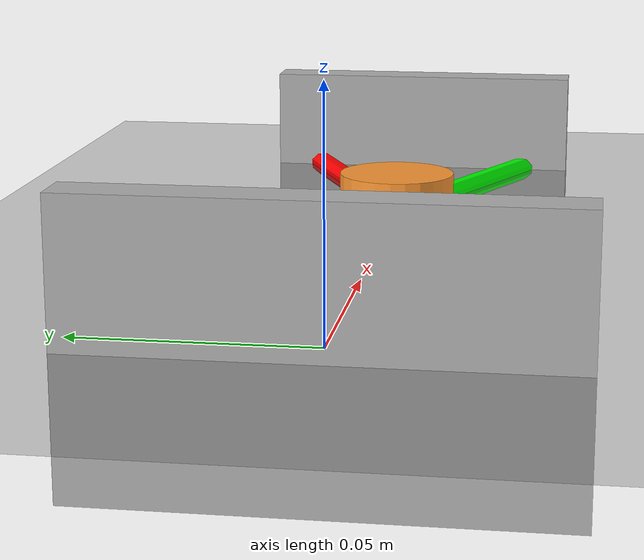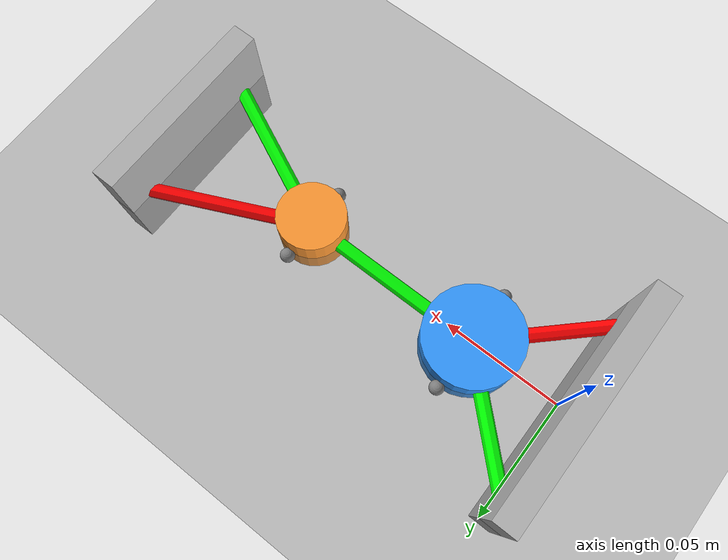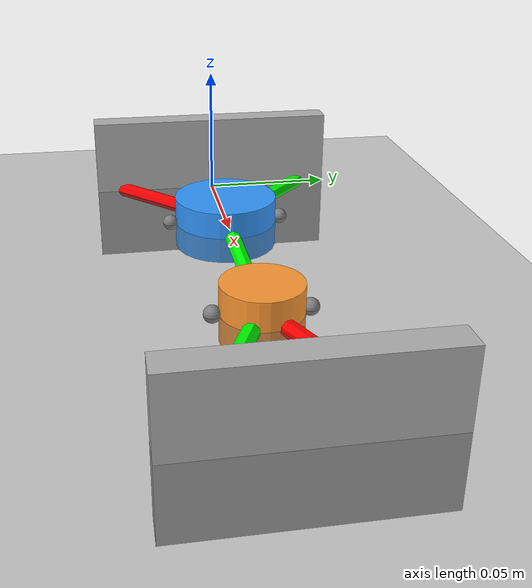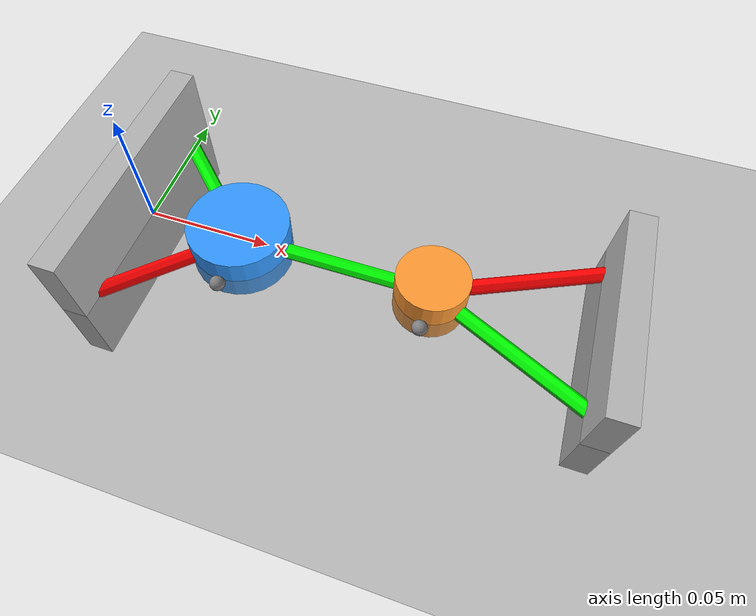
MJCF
<?xml version="1.0" encoding="utf-8"?>
<mujoco model="2R Crossed Belt Mechanism">

    <option timestep="0.0001" gravity="0 0 -9.81"/>

    <asset>
        <texture name="grid" type="2d" builtin="checker" rgb1=".1 .1 .1" rgb2=".6 .6 .6" width="300" height="300"/>
        <material name="grid" texture="grid" texrepeat="8 8" reflectance="0.2"/>
    </asset>

    <worldbody>
        <light pos="0 0 5" dir="0 0 -1"/>
        <geom type="plane" size="2 2 0.1" material="grid"/>

        <body name="base" pos="0 0 0">

            <!-- Левый неподвижный шкив -->
            <body name="body_block1" pos="0.039 0 0">
                <geom name="block1" type="cylinder" size="0.020 0.010" rgba="0.2 0.6 1 1"/>

                <!-- Двигающиеся точки касания -->
                <body name="t1_block1_body" pos="0 0 0">
                    <joint name="t1_b1_x" type="slide" axis="1 0 0" limited="false"/>
                    <joint name="t1_b1_y" type="slide" axis="0 1 0" limited="false"/>
                    <geom type="sphere" size="0.003" rgba="0 1 0 0.8"/>
                    <site name="t1_block1" size="0.004" group="3"/>
                </body>
                <body name="t2_block1_body" pos="0 0 0">
                    <joint name="t2_b1_x" type="slide" axis="1 0 0" limited="false"/>
                    <joint name="t2_b1_y" type="slide" axis="0 1 0" limited="false"/>
                    <geom type="sphere" size="0.003" rgba="1 0 0 0.8"/>
                    <site name="t2_block1" size="0.004" group="3"/>
                </body>

                <site name="s1_b1" pos="0  0.022 0" size="0.003" group="2"/>
                <site name="s2_b1" pos="0 -0.022 0" size="0.003" group="2"/>
            </body>

            <!-- Правый подвижный шкив -->
            <body name="body_block2" pos="0.116 0 0">
                <joint name="block2_y" type="slide" axis="0 1 0"
                       limited="true" range="-0.09 0.09" damping="0.5"/>

                <geom name="block2" type="cylinder" size="0.014 0.010" rgba="1 0.6 0.2 1"/>

                <body name="t1_block2_body" pos="0 0 0">
                    <joint name="t1_b2_x" type="slide" axis="1 0 0" limited="false"/>
                    <joint name="t1_b2_y" type="slide" axis="0 1 0" limited="false"/>
                    <geom type="sphere" size="0.003" rgba="0 0 1 0.8"/>
                    <site name="t1_block2" size="0.004" group="3"/>
                </body>
                <body name="t2_block2_body" pos="0 0 0">
                    <joint name="t2_b2_x" type="slide" axis="1 0 0" limited="false"/>
                    <joint name="t2_b2_y" type="slide" axis="0 1 0" limited="false"/>
                    <geom type="sphere" size="0.003" rgba="1 1 0 0.8"/>
                    <site name="t2_block2" size="0.004" group="3"/>
                </body>

                <site name="s1_b2" pos="0 -0.016 0" size="0.003" group="2"/>
                <site name="s2_b2" pos="0  0.016 0" size="0.003" group="2"/>

                <!-- Нагрузка -->
                <body name="load" pos="0.065 0 0">
                    <geom type="box" size="0.005 0.04 0.025" rgba="0.7 0.7 0.7 1"/>
                    <site name="s1_load" pos="0 -0.03 0" size="0.004" group="2"/>
                    <site name="s2_load" pos="0  0.03 0" size="0.004" group="2"/>
                </body>
            </body>

            <!-- Левая стенка -->
            <body name="left_wall" pos="-0.005 0 0">
                <geom type="box" size="0.005 0.05 0.03" rgba="0.7 0.7 0.7 1"/>
                <site name="s1_base" pos="0  0.042 0" size="0.004" group="2"/>
                <site name="s2_base" pos="0 -0.042 0" size="0.004" group="2"/>
            </body>
        </body>
    </worldbody>

    <tendon>
        <spatial limited="false" width="0.003" rgba="0 1 0 1">
            <site site="s1_base"/>
            <geom geom="block1" sidesite="s1_b1"/>
            <site site="t1_block1"/>
            <site site="t1_block2"/>
            <geom geom="block2" sidesite="s1_b2"/>
            <site site="s1_load"/>
        </spatial>

        <spatial limited="false" width="0.003" rgba="1 0 0 1">
            <site site="s2_base"/>
            <geom geom="block1" sidesite="s2_b1"/>
            <site site="t2_block1"/>
            <site site="t2_block2"/>
            <geom geom="block2" sidesite="s2_b2"/>
            <site site="s2_load"/>
        </spatial>
    </tendon>

    <actuator>
        <position joint="block2_y" kp="5" name="load_actuator"/>
    </actuator>
</mujoco>
